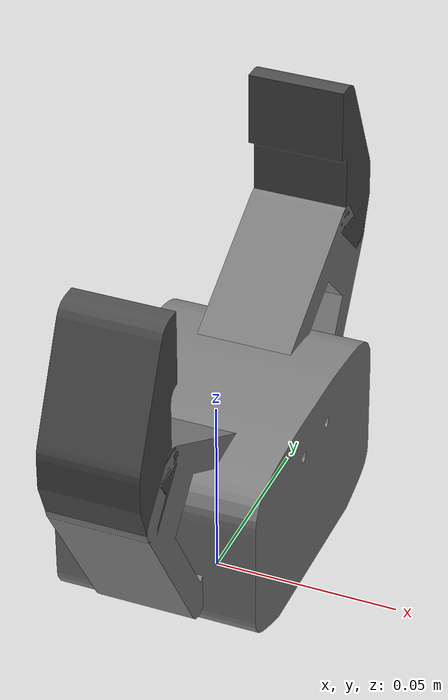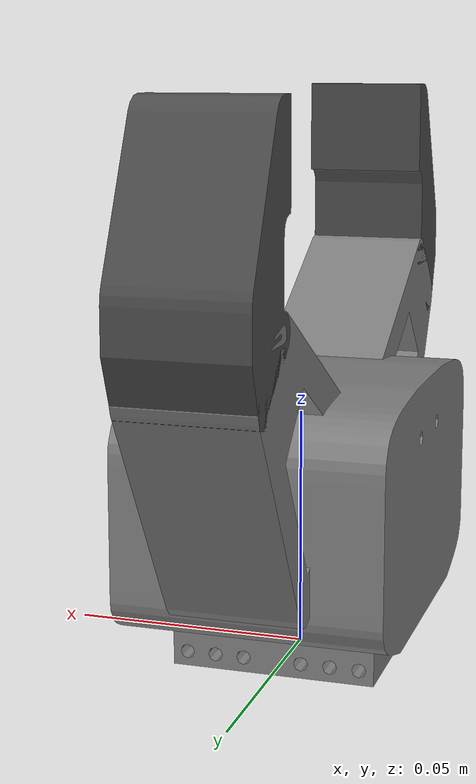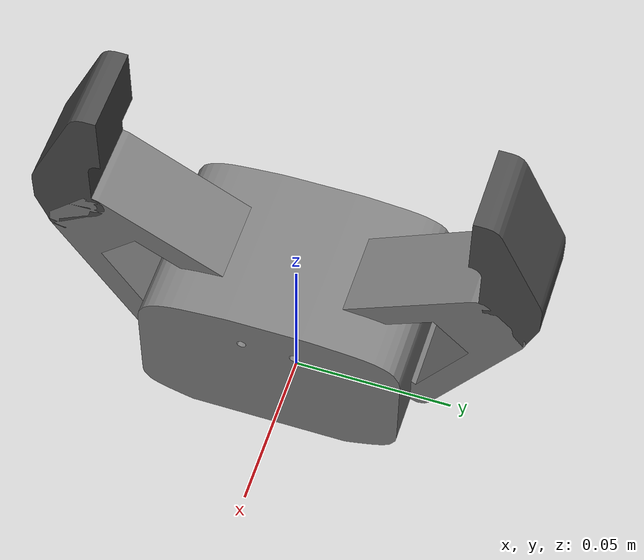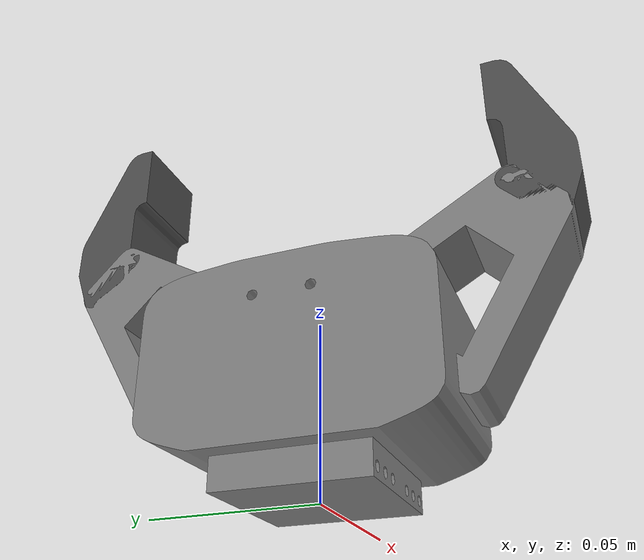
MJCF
<!-- RH-P12-RN Gripper Complete Model -->
<mujoco model="rh_p12_rn_gripper">
  <compiler angle="radian" meshdir="assets/gripper"/>

  <!-- Assets -->
  <include file="assets/gripper/rh_p12_rn_assets.xml"/>

  <!-- Default settings -->
  <default>
    <material specular="0.5" shininess="0.25"/>
    <joint axis="1 0 0" range="0 1.1" armature="0.01" damping="0.7"/>
    <geom type="mesh" contype="1" conaffinity="1" group="2"/>
  </default>

  <!-- Body Structure -->
  <include file="assets/gripper/rh_p12_rn_body.xml"/>

  <!-- Actuators -->
  <include file="assets/gripper/rh_p12_rn_actuators.xml"/>

  <!-- Keyframes for different gripper poses -->
  <keyframe>
    <key name="open" qpos="0 0 0 0" ctrl="0 0 0 0 0"/>
    <key name="closed" qpos="1.0 1.0 0.8 0.8" ctrl="1.0 1.0 1.0 0.8 0.8"/>
    <key name="half_closed" qpos="0.5 0.5 0.4 0.4" ctrl="0.5 0.5 0.5 0.4 0.4"/>
  </keyframe>
</mujoco>

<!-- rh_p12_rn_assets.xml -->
<!-- RH-P12-RN Gripper Assets -->
<mujoco>
  <asset>
    <!-- Materials -->
    <material name="gripper_grey" rgba="0.5 0.5 0.5 1"/>
    <material name="gripper_dark" rgba="0.3 0.3 0.3 1"/>

    <!-- Meshes -->
    <mesh file="../../RH-P12-RN/rh_p12_rn_description/meshes/base.stl" scale="0.001 0.001 0.001"/>
    <mesh file="../../RH-P12-RN/rh_p12_rn_description/meshes/r1.stl" scale="0.001 0.001 0.001"/>
    <mesh file="../../RH-P12-RN/rh_p12_rn_description/meshes/r2.stl" scale="0.001 0.001 0.001"/>
    <mesh file="../../RH-P12-RN/rh_p12_rn_description/meshes/l1.stl" scale="0.001 0.001 0.001"/>
    <mesh file="../../RH-P12-RN/rh_p12_rn_description/meshes/l2.stl" scale="0.001 0.001 0.001"/>
  </asset>
</mujoco>

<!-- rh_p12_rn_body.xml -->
<!-- RH-P12-RN Gripper Body Structure -->
<mujoco>
  <worldbody>
    <!-- RH-P12-RN Base -->
    <body name="rh_p12_rn_base" pos="0 0 0">
      <inertial mass="0.236" pos="0 0 0.032" diaginertia="0.00017 0.00011 0.00017"/>
      <geom mesh="base" material="gripper_grey" type="mesh"/>

      <!-- Right Finger Chain -->
      <body name="rh_p12_rn_r1" pos="0 0.008 0.048">
        <inertial mass="0.068" pos="0 0.034 0.004" diaginertia="0.00004 0.00002 0.00002"/>
        <joint name="rh_p12_rn_right" axis="1 0 0" range="0 1.6" armature="0.01" damping="0.7" limited="true"/>
        <geom mesh="r1" material="gripper_grey" type="mesh"/>

        <!-- Right Finger Tip -->
        <body name="rh_p12_rn_r2" pos="0 0.0493634 0.0285">
          <inertial mass="0.022" pos="0 0.006 0.011" diaginertia="0.00001 0.00001 0.00001"/>
          <joint name="rh_r2" axis="-1 0 0" range="0 1.6" armature="0.005" damping="0.7" limited="true"/>
          <geom mesh="r2" material="gripper_dark" type="mesh"/>
        </body>
      </body>

      <!-- Left Finger Chain -->
      <body name="rh_p12_rn_l1" pos="0 -0.008 0.048">
        <inertial mass="0.068" pos="0 -0.034 0.004" diaginertia="0.00004 0.00002 0.00002"/>
        <joint name="rh_p12_rn_left" axis="-1 0 0" range="0 1.6" armature="0.01" damping="0.7" limited="true"/>
        <geom mesh="l1" material="gripper_grey" type="mesh"/>

        <!-- Left Finger Tip -->
        <body name="rh_p12_rn_l2" pos="0 -0.0493634 0.0285">
          <inertial mass="0.022" pos="0 -0.006 0.011" diaginertia="0.00001 0.00001 0.00001"/>
          <joint name="rh_l2" axis="1 0 0" range="0 1.6" armature="0.005" damping="0.7" limited="true"/>
          <geom mesh="l2" material="gripper_dark" type="mesh"/>
        </body>
      </body>
    </body>
  </worldbody>
</mujoco>

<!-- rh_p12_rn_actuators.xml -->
<!-- RH-P12-RN Gripper Actuators -->
<mujoco>
  <actuator>
    <!-- Single actuator for synchronized gripper motion -->
    <position name="gripper_actuator" joint="rh_p12_rn_right" ctrlrange="0 1.6" kp="100" kv="10" forcerange="-1000 1000"/>
  </actuator>

  <equality>
    <!-- Synchronize left finger with right finger (mirrored motion) -->
    <joint joint1="rh_p12_rn_right" joint2="rh_p12_rn_left" polycoef="0 1 0 0 0"/>
    <!-- Keep fingertips parallel by moving them opposite to main fingers -->
    <joint joint1="rh_p12_rn_right" joint2="rh_r2" polycoef="0 1 0 0 0"/>
    <joint joint1="rh_p12_rn_left" joint2="rh_l2" polycoef="0 1 0 0 0"/>
  </equality>
</mujoco>
